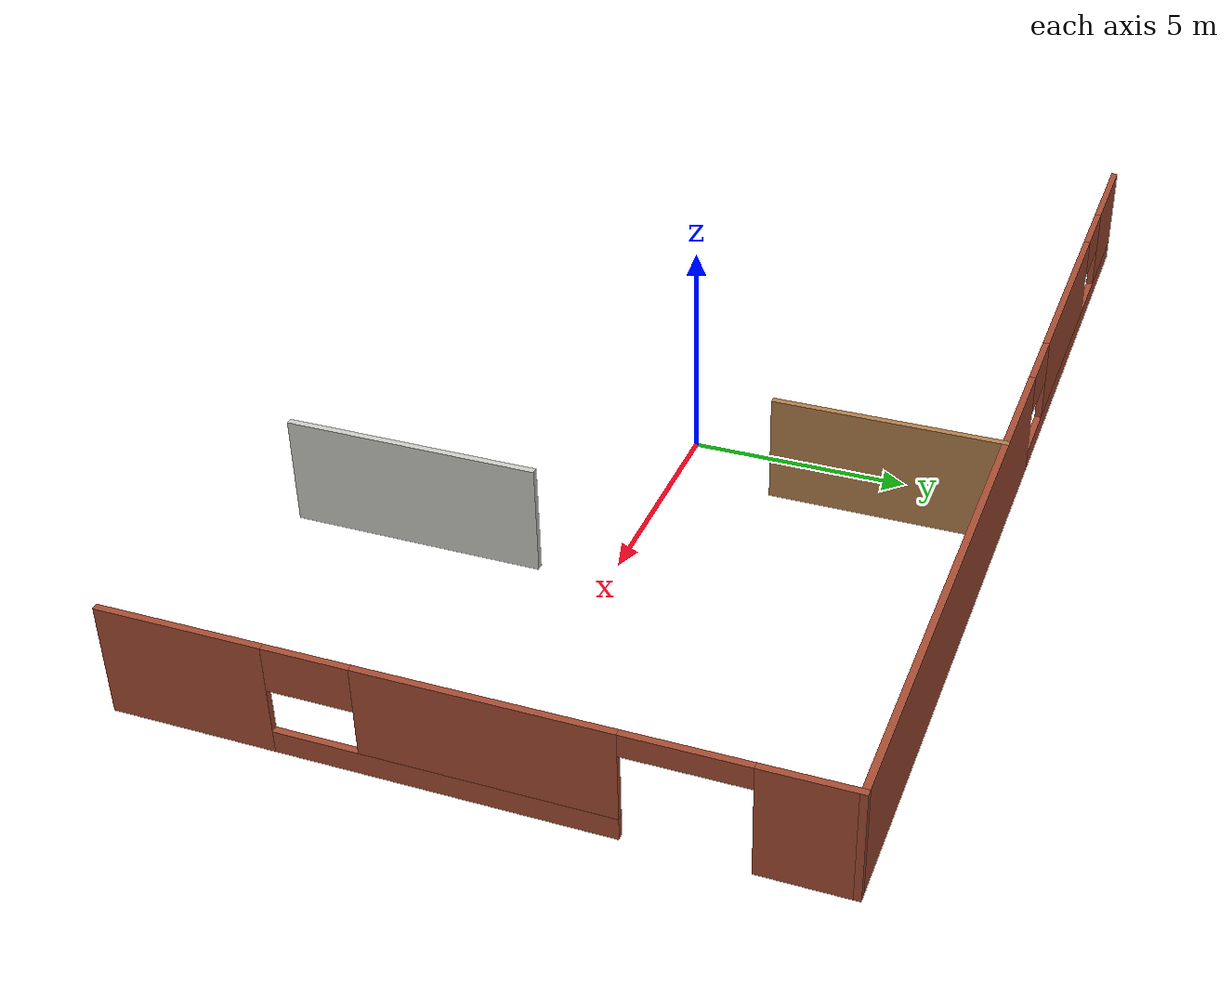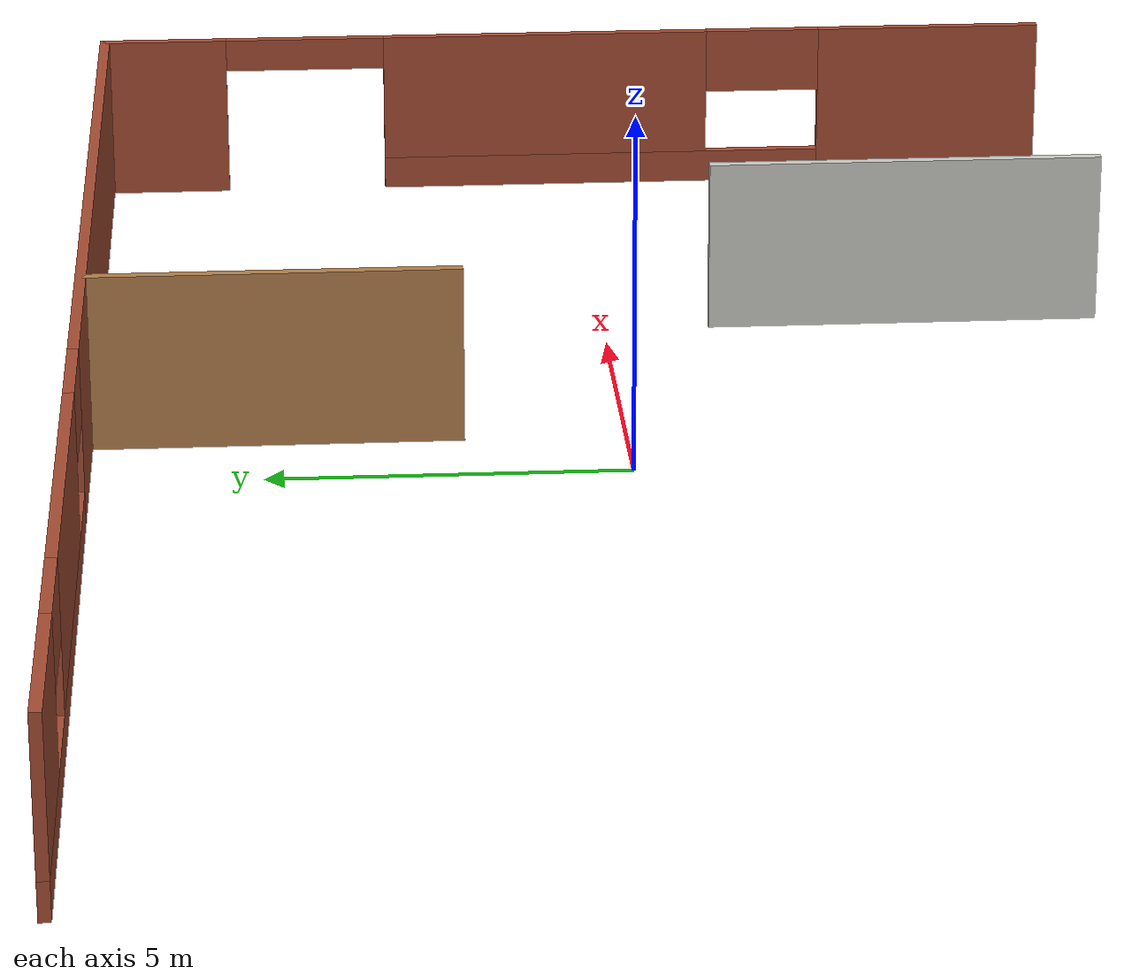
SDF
<sdf version="1.6">
 <model name="myhouse">
  <link name="Wall_12">
   <pose>5.62786 -4.42847 0 0 -0 1.5708</pose>
   <visual name="Wall_12_Visual">
    <pose>0 0 1.25 0 -0 0</pose>
    <geometry><box><size>5.75 0.15 2.5</size></box></geometry>
    <material>
     <script><uri>file://media/materials/scripts/gazebo.material</uri><name>Gazebo/CeilingTiled</name></script>
     <ambient>0.333333 1 1 1</ambient>
     <shader type="pixel"/>
     <diffuse>1 1 1 1</diffuse>
     <specular>0 0 0 1</specular>
     <emissive>0 0 0 1</emissive>
    </material>
    <meta><layer>0</layer></meta>
   </visual>
   <collision name="Wall_12_Collision">
    <pose>0 0 1.25 0 -0 0</pose>
    <geometry><box><size>5.75 0.15 2.5</size></box></geometry>
    <surface>
     <friction>
      <ode><mu>1</mu><mu2>1</mu2><fdir1>0 0 0</fdir1><slip1>0</slip1><slip2>0</slip2></ode>
      <torsional>
       <coefficient>1</coefficient>
       <patch_radius>0</patch_radius>
       <surface_radius>0</surface_radius>
       <use_patch_radius>1</use_patch_radius>
       <ode><slip>0</slip></ode>
      </torsional>
     </friction>
     <bounce><restitution_coefficient>0</restitution_coefficient><threshold>1e+06</threshold></bounce>
     <contact>
      <collide_without_contact>0</collide_without_contact>
      <collide_without_contact_bitmask>1</collide_without_contact_bitmask>
      <collide_bitmask>1</collide_bitmask>
      <ode>
       <soft_cfm>0</soft_cfm>
       <soft_erp>0.2</soft_erp>
       <kp>1e+13</kp>
       <kd>1</kd>
       <max_vel>0.01</max_vel>
       <min_depth>0</min_depth>
      </ode>
      <bullet>
       <split_impulse>1</split_impulse>
       <split_impulse_penetration_threshold>-0.01</split_impulse_penetration_threshold>
       <soft_cfm>0</soft_cfm>
       <soft_erp>0.2</soft_erp>
       <kp>1e+13</kp>
       <kd>1</kd>
      </bullet>
     </contact>
    </surface>
   </collision>
  </link>
  <link name="Wall_3">
   <pose>12.55 -0.012047 0 0 -0 1.5708</pose>
   <visual name="Wall_3_Visual_0">
    <pose>-5.73076 0 1.25 0 -0 0</pose>
    <geometry><box><size>3.53847 0.15 2.5</size></box></geometry>
    <material>
     <script><uri>file://media/materials/scripts/gazebo.material</uri><name>Gazebo/Bricks</name></script>
     <ambient>1 1 1 1</ambient>
     <shader type="pixel"/>
     <diffuse>1 1 1 1</diffuse>
     <specular>0.2 0.2 0.2 1</specular>
     <emissive>0 0 0 1</emissive>
    </material>
    <meta><layer>0</layer></meta>
   </visual>
   <visual name="Wall_3_Visual_1">
    <pose>6.50526 0 1.25 0 -0 0</pose>
    <geometry><box><size>1.98949 0.15 2.5</size></box></geometry>
    <material>
     <script><uri>file://media/materials/scripts/gazebo.material</uri><name>Gazebo/Bricks</name></script>
     <ambient>1 1 1 1</ambient>
     <shader type="pixel"/>
     <diffuse>1 1 1 1</diffuse>
     <specular>0.2 0.2 0.2 1</specular>
     <emissive>0 0 0 1</emissive>
    </material>
    <meta><layer>0</layer></meta>
   </visual>
   <visual name="Wall_3_Visual_2">
    <pose>-0.475509 0 0.25 0 -0 0</pose>
    <geometry><box><size>6.97204 0.15 0.5</size></box></geometry>
    <material>
     <script><uri>file://media/materials/scripts/gazebo.material</uri><name>Gazebo/Bricks</name></script>
     <ambient>1 1 1 1</ambient>
     <shader type="pixel"/>
     <diffuse>1 1 1 1</diffuse>
     <specular>0.2 0.2 0.2 1</specular>
     <emissive>0 0 0 1</emissive>
    </material>
    <meta><layer>0</layer></meta>
   </visual>
   <visual name="Wall_3_Visual_3">
    <pose>0.424491 0 1.5 0 -0 0</pose>
    <geometry><box><size>5.17204 0.15 2</size></box></geometry>
    <material>
     <script><uri>file://media/materials/scripts/gazebo.material</uri><name>Gazebo/Bricks</name></script>
     <ambient>1 1 1 1</ambient>
     <shader type="pixel"/>
     <diffuse>1 1 1 1</diffuse>
     <specular>0.2 0.2 0.2 1</specular>
     <emissive>0 0 0 1</emissive>
    </material>
    <meta><layer>0</layer></meta>
   </visual>
   <visual name="Wall_3_Visual_4">
    <pose>-3.06153 0 2 0 -0 0</pose>
    <geometry><box><size>1.8 0.15 1</size></box></geometry>
    <material>
     <script><uri>file://media/materials/scripts/gazebo.material</uri><name>Gazebo/Bricks</name></script>
     <ambient>1 1 1 1</ambient>
     <shader type="pixel"/>
     <diffuse>1 1 1 1</diffuse>
     <specular>0.2 0.2 0.2 1</specular>
     <emissive>0 0 0 1</emissive>
    </material>
    <meta><layer>0</layer></meta>
   </visual>
   <visual name="Wall_3_Visual_5">
    <pose>4.26051 0 2.25 0 -0 0</pose>
    <geometry><box><size>2.5 0.15 0.5</size></box></geometry>
    <material>
     <script><uri>file://media/materials/scripts/gazebo.material</uri><name>Gazebo/Bricks</name></script>
     <ambient>1 1 1 1</ambient>
     <shader type="pixel"/>
     <diffuse>1 1 1 1</diffuse>
     <specular>0.2 0.2 0.2 1</specular>
     <emissive>0 0 0 1</emissive>
    </material>
    <meta><layer>0</layer></meta>
   </visual>
   <collision name="Wall_3_Collision_0">
    <pose>-5.73076 0 1.25 0 -0 0</pose>
    <geometry><box><size>3.53847 0.15 2.5</size></box></geometry>
    <surface>
     <friction>
      <ode><mu>1</mu><mu2>1</mu2><fdir1>0 0 0</fdir1><slip1>0</slip1><slip2>0</slip2></ode>
      <torsional>
       <coefficient>1</coefficient>
       <patch_radius>0</patch_radius>
       <surface_radius>0</surface_radius>
       <use_patch_radius>1</use_patch_radius>
       <ode><slip>0</slip></ode>
      </torsional>
     </friction>
     <bounce><restitution_coefficient>0</restitution_coefficient><threshold>1e+06</threshold></bounce>
     <contact>
      <collide_without_contact>0</collide_without_contact>
      <collide_without_contact_bitmask>1</collide_without_contact_bitmask>
      <collide_bitmask>1</collide_bitmask>
      <ode>
       <soft_cfm>0</soft_cfm>
       <soft_erp>0.2</soft_erp>
       <kp>1e+13</kp>
       <kd>1</kd>
       <max_vel>0.01</max_vel>
       <min_depth>0</min_depth>
      </ode>
      <bullet>
       <split_impulse>1</split_impulse>
       <split_impulse_penetration_threshold>-0.01</split_impulse_penetration_threshold>
       <soft_cfm>0</soft_cfm>
       <soft_erp>0.2</soft_erp>
       <kp>1e+13</kp>
       <kd>1</kd>
      </bullet>
     </contact>
    </surface>
   </collision>
   <collision name="Wall_3_Collision_1">
    <pose>6.50526 0 1.25 0 -0 0</pose>
    <geometry><box><size>1.98949 0.15 2.5</size></box></geometry>
    <surface>
     <friction>
      <ode><mu>1</mu><mu2>1</mu2><fdir1>0 0 0</fdir1><slip1>0</slip1><slip2>0</slip2></ode>
      <torsional>
       <coefficient>1</coefficient>
       <patch_radius>0</patch_radius>
       <surface_radius>0</surface_radius>
       <use_patch_radius>1</use_patch_radius>
       <ode><slip>0</slip></ode>
      </torsional>
     </friction>
     <bounce><restitution_coefficient>0</restitution_coefficient><threshold>1e+06</threshold></bounce>
     <contact>
      <collide_without_contact>0</collide_without_contact>
      <collide_without_contact_bitmask>1</collide_without_contact_bitmask>
      <collide_bitmask>1</collide_bitmask>
      <ode>
       <soft_cfm>0</soft_cfm>
       <soft_erp>0.2</soft_erp>
       <kp>1e+13</kp>
       <kd>1</kd>
       <max_vel>0.01</max_vel>
       <min_depth>0</min_depth>
      </ode>
      <bullet>
       <split_impulse>1</split_impulse>
       <split_impulse_penetration_threshold>-0.01</split_impulse_penetration_threshold>
       <soft_cfm>0</soft_cfm>
       <soft_erp>0.2</soft_erp>
       <kp>1e+13</kp>
       <kd>1</kd>
      </bullet>
     </contact>
    </surface>
   </collision>
   <collision name="Wall_3_Collision_2">
    <pose>-0.475509 0 0.25 0 -0 0</pose>
    <geometry><box><size>6.97204 0.15 0.5</size></box></geometry>
    <surface>
     <friction>
      <ode><mu>1</mu><mu2>1</mu2><fdir1>0 0 0</fdir1><slip1>0</slip1><slip2>0</slip2></ode>
      <torsional>
       <coefficient>1</coefficient>
       <patch_radius>0</patch_radius>
       <surface_radius>0</surface_radius>
       <use_patch_radius>1</use_patch_radius>
       <ode><slip>0</slip></ode>
      </torsional>
     </friction>
     <bounce><restitution_coefficient>0</restitution_coefficient><threshold>1e+06</threshold></bounce>
     <contact>
      <collide_without_contact>0</collide_without_contact>
      <collide_without_contact_bitmask>1</collide_without_contact_bitmask>
      <collide_bitmask>1</collide_bitmask>
      <ode>
       <soft_cfm>0</soft_cfm>
       <soft_erp>0.2</soft_erp>
       <kp>1e+13</kp>
       <kd>1</kd>
       <max_vel>0.01</max_vel>
       <min_depth>0</min_depth>
      </ode>
      <bullet>
       <split_impulse>1</split_impulse>
       <split_impulse_penetration_threshold>-0.01</split_impulse_penetration_threshold>
       <soft_cfm>0</soft_cfm>
       <soft_erp>0.2</soft_erp>
       <kp>1e+13</kp>
       <kd>1</kd>
      </bullet>
     </contact>
    </surface>
   </collision>
   <collision name="Wall_3_Collision_3">
    <pose>0.424491 0 1.5 0 -0 0</pose>
    <geometry><box><size>5.17204 0.15 2</size></box></geometry>
    <surface>
     <friction>
      <ode><mu>1</mu><mu2>1</mu2><fdir1>0 0 0</fdir1><slip1>0</slip1><slip2>0</slip2></ode>
      <torsional>
       <coefficient>1</coefficient>
       <patch_radius>0</patch_radius>
       <surface_radius>0</surface_radius>
       <use_patch_radius>1</use_patch_radius>
       <ode><slip>0</slip></ode>
      </torsional>
     </friction>
     <bounce><restitution_coefficient>0</restitution_coefficient><threshold>1e+06</threshold></bounce>
     <contact>
      <collide_without_contact>0</collide_without_contact>
      <collide_without_contact_bitmask>1</collide_without_contact_bitmask>
      <collide_bitmask>1</collide_bitmask>
      <ode>
       <soft_cfm>0</soft_cfm>
       <soft_erp>0.2</soft_erp>
       <kp>1e+13</kp>
       <kd>1</kd>
       <max_vel>0.01</max_vel>
       <min_depth>0</min_depth>
      </ode>
      <bullet>
       <split_impulse>1</split_impulse>
       <split_impulse_penetration_threshold>-0.01</split_impulse_penetration_threshold>
       <soft_cfm>0</soft_cfm>
       <soft_erp>0.2</soft_erp>
       <kp>1e+13</kp>
       <kd>1</kd>
      </bullet>
     </contact>
    </surface>
   </collision>
   <collision name="Wall_3_Collision_5">
    <pose>4.26051 0 2.25 0 -0 0</pose>
    <geometry><box><size>2.5 0.15 0.5</size></box></geometry>
    <surface>
     <friction>
      <ode><mu>1</mu><mu2>1</mu2><fdir1>0 0 0</fdir1><slip1>0</slip1><slip2>0</slip2></ode>
      <torsional>
       <coefficient>1</coefficient>
       <patch_radius>0</patch_radius>
       <surface_radius>0</surface_radius>
       <use_patch_radius>1</use_patch_radius>
       <ode><slip>0</slip></ode>
      </torsional>
     </friction>
     <bounce><restitution_coefficient>0</restitution_coefficient><threshold>1e+06</threshold></bounce>
     <contact>
      <collide_without_contact>0</collide_without_contact>
      <collide_without_contact_bitmask>1</collide_without_contact_bitmask>
      <collide_bitmask>1</collide_bitmask>
      <ode>
       <soft_cfm>0</soft_cfm>
       <soft_erp>0.2</soft_erp>
       <kp>1e+13</kp>
       <kd>1</kd>
       <max_vel>0.01</max_vel>
       <min_depth>0</min_depth>
      </ode>
      <bullet>
       <split_impulse>1</split_impulse>
       <split_impulse_penetration_threshold>-0.01</split_impulse_penetration_threshold>
       <soft_cfm>0</soft_cfm>
       <soft_erp>0.2</soft_erp>
       <kp>1e+13</kp>
       <kd>1</kd>
      </bullet>
     </contact>
    </surface>
   </collision>
   <collision name="Wall_3_Collision_4">
    <pose>-3.06153 0 2 0 -0 0</pose>
    <geometry><box><size>1.8 0.15 1</size></box></geometry>
    <surface>
     <friction>
      <ode><mu>1</mu><mu2>1</mu2><fdir1>0 0 0</fdir1><slip1>0</slip1><slip2>0</slip2></ode>
      <torsional>
       <coefficient>1</coefficient>
       <patch_radius>0</patch_radius>
       <surface_radius>0</surface_radius>
       <use_patch_radius>1</use_patch_radius>
       <ode><slip>0</slip></ode>
      </torsional>
     </friction>
     <bounce><restitution_coefficient>0</restitution_coefficient><threshold>1e+06</threshold></bounce>
     <contact>
      <collide_without_contact>0</collide_without_contact>
      <collide_without_contact_bitmask>1</collide_without_contact_bitmask>
      <collide_bitmask>1</collide_bitmask>
      <ode>
       <soft_cfm>0</soft_cfm>
       <soft_erp>0.2</soft_erp>
       <kp>1e+13</kp>
       <kd>1</kd>
       <max_vel>0.01</max_vel>
       <min_depth>0</min_depth>
      </ode>
      <bullet>
       <split_impulse>1</split_impulse>
       <split_impulse_penetration_threshold>-0.01</split_impulse_penetration_threshold>
       <soft_cfm>0</soft_cfm>
       <soft_erp>0.2</soft_erp>
       <kp>1e+13</kp>
       <kd>1</kd>
      </bullet>
     </contact>
    </surface>
   </collision>
  </link>
  <link name="Wall_4">
   <pose>0 7.41295 0 0 -0 3.14159</pose>
   <visual name="Wall_4_Visual_0">
    <pose>-5.56469 0 1.25 0 -0 0</pose>
    <geometry><box><size>14.1206 0.15 2.5</size></box></geometry>
    <material>
     <script><uri>file://media/materials/scripts/gazebo.material</uri><name>Gazebo/Bricks</name></script>
     <ambient>1 1 1 1</ambient>
     <shader type="pixel"/>
     <diffuse>1 1 1 1</diffuse>
     <specular>0.2 0.2 0.2 1</specular>
     <emissive>0 0 0 1</emissive>
    </material>
    <meta><layer>0</layer></meta>
   </visual>
   <visual name="Wall_4_Visual_1">
    <pose>7.06031 0 0.25 0 -0 0</pose>
    <geometry><box><size>11.1294 0.15 0.5</size></box></geometry>
    <material>
     <script><uri>file://media/materials/scripts/gazebo.material</uri><name>Gazebo/Bricks</name></script>
     <ambient>1 1 1 1</ambient>
     <shader type="pixel"/>
     <diffuse>1 1 1 1</diffuse>
     <specular>0.2 0.2 0.2 1</specular>
     <emissive>0 0 0 1</emissive>
    </material>
    <meta><layer>0</layer></meta>
   </visual>
   <visual name="Wall_4_Visual_2">
    <pose>5.75457 0 1.5 0 -0 0</pose>
    <geometry><box><size>5.3179 0.15 2</size></box></geometry>
    <material>
     <script><uri>file://media/materials/scripts/gazebo.material</uri><name>Gazebo/Bricks</name></script>
     <ambient>1 1 1 1</ambient>
     <shader type="pixel"/>
     <diffuse>1 1 1 1</diffuse>
     <specular>0.2 0.2 0.2 1</specular>
     <emissive>0 0 0 1</emissive>
    </material>
    <meta><layer>0</layer></meta>
   </visual>
   <visual name="Wall_4_Visual_3">
    <pose>11.3193 0 1.5 0 -0 0</pose>
    <geometry><box><size>2.61148 0.15 2</size></box></geometry>
    <material>
     <script><uri>file://media/materials/scripts/gazebo.material</uri><name>Gazebo/Bricks</name></script>
     <ambient>1 1 1 1</ambient>
     <shader type="pixel"/>
     <diffuse>1 1 1 1</diffuse>
     <specular>0.2 0.2 0.2 1</specular>
     <emissive>0 0 0 1</emissive>
    </material>
    <meta><layer>0</layer></meta>
   </visual>
   <visual name="Wall_4_Visual_4">
    <pose>2.29561 0 2 0 -0 0</pose>
    <geometry><box><size>1.6 0.15 1</size></box></geometry>
    <material>
     <script><uri>file://media/materials/scripts/gazebo.material</uri><name>Gazebo/Bricks</name></script>
     <ambient>1 1 1 1</ambient>
     <shader type="pixel"/>
     <diffuse>1 1 1 1</diffuse>
     <specular>0.2 0.2 0.2 1</specular>
     <emissive>0 0 0 1</emissive>
    </material>
    <meta><layer>0</layer></meta>
   </visual>
   <visual name="Wall_4_Visual_5">
    <pose>9.21352 0 2 0 -0 0</pose>
    <geometry><box><size>1.6 0.15 1</size></box></geometry>
    <material>
     <script><uri>file://media/materials/scripts/gazebo.material</uri><name>Gazebo/Bricks</name></script>
     <ambient>1 1 1 1</ambient>
     <shader type="pixel"/>
     <diffuse>1 1 1 1</diffuse>
     <specular>0.2 0.2 0.2 1</specular>
     <emissive>0 0 0 1</emissive>
    </material>
    <meta><layer>0</layer></meta>
   </visual>
   <collision name="Wall_4_Collision_0">
    <pose>-5.56469 0 1.25 0 -0 0</pose>
    <geometry><box><size>14.1206 0.15 2.5</size></box></geometry>
    <surface>
     <friction>
      <ode><mu>1</mu><mu2>1</mu2><fdir1>0 0 0</fdir1><slip1>0</slip1><slip2>0</slip2></ode>
      <torsional>
       <coefficient>1</coefficient>
       <patch_radius>0</patch_radius>
       <surface_radius>0</surface_radius>
       <use_patch_radius>1</use_patch_radius>
       <ode><slip>0</slip></ode>
      </torsional>
     </friction>
     <bounce><restitution_coefficient>0</restitution_coefficient><threshold>1e+06</threshold></bounce>
     <contact>
      <collide_without_contact>0</collide_without_contact>
      <collide_without_contact_bitmask>1</collide_without_contact_bitmask>
      <collide_bitmask>1</collide_bitmask>
      <ode>
       <soft_cfm>0</soft_cfm>
       <soft_erp>0.2</soft_erp>
       <kp>1e+13</kp>
       <kd>1</kd>
       <max_vel>0.01</max_vel>
       <min_depth>0</min_depth>
      </ode>
      <bullet>
       <split_impulse>1</split_impulse>
       <split_impulse_penetration_threshold>-0.01</split_impulse_penetration_threshold>
       <soft_cfm>0</soft_cfm>
       <soft_erp>0.2</soft_erp>
       <kp>1e+13</kp>
       <kd>1</kd>
      </bullet>
     </contact>
    </surface>
   </collision>
   <collision name="Wall_4_Collision_1">
    <pose>7.06031 0 0.25 0 -0 0</pose>
    <geometry><box><size>11.1294 0.15 0.5</size></box></geometry>
    <surface>
     <friction>
      <ode><mu>1</mu><mu2>1</mu2><fdir1>0 0 0</fdir1><slip1>0</slip1><slip2>0</slip2></ode>
      <torsional>
       <coefficient>1</coefficient>
       <patch_radius>0</patch_radius>
       <surface_radius>0</surface_radius>
       <use_patch_radius>1</use_patch_radius>
       <ode><slip>0</slip></ode>
      </torsional>
     </friction>
     <bounce><restitution_coefficient>0</restitution_coefficient><threshold>1e+06</threshold></bounce>
     <contact>
      <collide_without_contact>0</collide_without_contact>
      <collide_without_contact_bitmask>1</collide_without_contact_bitmask>
      <collide_bitmask>1</collide_bitmask>
      <ode>
       <soft_cfm>0</soft_cfm>
       <soft_erp>0.2</soft_erp>
       <kp>1e+13</kp>
       <kd>1</kd>
       <max_vel>0.01</max_vel>
       <min_depth>0</min_depth>
      </ode>
      <bullet>
       <split_impulse>1</split_impulse>
       <split_impulse_penetration_threshold>-0.01</split_impulse_penetration_threshold>
       <soft_cfm>0</soft_cfm>
       <soft_erp>0.2</soft_erp>
       <kp>1e+13</kp>
       <kd>1</kd>
      </bullet>
     </contact>
    </surface>
   </collision>
   <collision name="Wall_4_Collision_2">
    <pose>5.75457 0 1.5 0 -0 0</pose>
    <geometry><box><size>5.3179 0.15 2</size></box></geometry>
    <surface>
     <friction>
      <ode><mu>1</mu><mu2>1</mu2><fdir1>0 0 0</fdir1><slip1>0</slip1><slip2>0</slip2></ode>
      <torsional>
       <coefficient>1</coefficient>
       <patch_radius>0</patch_radius>
       <surface_radius>0</surface_radius>
       <use_patch_radius>1</use_patch_radius>
       <ode><slip>0</slip></ode>
      </torsional>
     </friction>
     <bounce><restitution_coefficient>0</restitution_coefficient><threshold>1e+06</threshold></bounce>
     <contact>
      <collide_without_contact>0</collide_without_contact>
      <collide_without_contact_bitmask>1</collide_without_contact_bitmask>
      <collide_bitmask>1</collide_bitmask>
      <ode>
       <soft_cfm>0</soft_cfm>
       <soft_erp>0.2</soft_erp>
       <kp>1e+13</kp>
       <kd>1</kd>
       <max_vel>0.01</max_vel>
       <min_depth>0</min_depth>
      </ode>
      <bullet>
       <split_impulse>1</split_impulse>
       <split_impulse_penetration_threshold>-0.01</split_impulse_penetration_threshold>
       <soft_cfm>0</soft_cfm>
       <soft_erp>0.2</soft_erp>
       <kp>1e+13</kp>
       <kd>1</kd>
      </bullet>
     </contact>
    </surface>
   </collision>
   <collision name="Wall_4_Collision_3">
    <pose>11.3193 0 1.5 0 -0 0</pose>
    <geometry><box><size>2.61148 0.15 2</size></box></geometry>
    <surface>
     <friction>
      <ode><mu>1</mu><mu2>1</mu2><fdir1>0 0 0</fdir1><slip1>0</slip1><slip2>0</slip2></ode>
      <torsional>
       <coefficient>1</coefficient>
       <patch_radius>0</patch_radius>
       <surface_radius>0</surface_radius>
       <use_patch_radius>1</use_patch_radius>
       <ode><slip>0</slip></ode>
      </torsional>
     </friction>
     <bounce><restitution_coefficient>0</restitution_coefficient><threshold>1e+06</threshold></bounce>
     <contact>
      <collide_without_contact>0</collide_without_contact>
      <collide_without_contact_bitmask>1</collide_without_contact_bitmask>
      <collide_bitmask>1</collide_bitmask>
      <ode>
       <soft_cfm>0</soft_cfm>
       <soft_erp>0.2</soft_erp>
       <kp>1e+13</kp>
       <kd>1</kd>
       <max_vel>0.01</max_vel>
       <min_depth>0</min_depth>
      </ode>
      <bullet>
       <split_impulse>1</split_impulse>
       <split_impulse_penetration_threshold>-0.01</split_impulse_penetration_threshold>
       <soft_cfm>0</soft_cfm>
       <soft_erp>0.2</soft_erp>
       <kp>1e+13</kp>
       <kd>1</kd>
      </bullet>
     </contact>
    </surface>
   </collision>
   <collision name="Wall_4_Collision_4">
    <pose>2.29561 0 2 0 -0 0</pose>
    <geometry><box><size>1.6 0.15 1</size></box></geometry>
    <surface>
     <friction>
      <ode><mu>1</mu><mu2>1</mu2><fdir1>0 0 0</fdir1><slip1>0</slip1><slip2>0</slip2></ode>
      <torsional>
       <coefficient>1</coefficient>
       <patch_radius>0</patch_radius>
       <surface_radius>0</surface_radius>
       <use_patch_radius>1</use_patch_radius>
       <ode><slip>0</slip></ode>
      </torsional>
     </friction>
     <bounce><restitution_coefficient>0</restitution_coefficient><threshold>1e+06</threshold></bounce>
     <contact>
      <collide_without_contact>0</collide_without_contact>
      <collide_without_contact_bitmask>1</collide_without_contact_bitmask>
      <collide_bitmask>1</collide_bitmask>
      <ode>
       <soft_cfm>0</soft_cfm>
       <soft_erp>0.2</soft_erp>
       <kp>1e+13</kp>
       <kd>1</kd>
       <max_vel>0.01</max_vel>
       <min_depth>0</min_depth>
      </ode>
      <bullet>
       <split_impulse>1</split_impulse>
       <split_impulse_penetration_threshold>-0.01</split_impulse_penetration_threshold>
       <soft_cfm>0</soft_cfm>
       <soft_erp>0.2</soft_erp>
       <kp>1e+13</kp>
       <kd>1</kd>
      </bullet>
     </contact>
    </surface>
   </collision>
   <collision name="Wall_4_Collision_5">
    <pose>9.21352 0 2 0 -0 0</pose>
    <geometry><box><size>1.6 0.15 1</size></box></geometry>
    <surface>
     <friction>
      <ode><mu>1</mu><mu2>1</mu2><fdir1>0 0 0</fdir1><slip1>0</slip1><slip2>0</slip2></ode>
      <torsional>
       <coefficient>1</coefficient>
       <patch_radius>0</patch_radius>
       <surface_radius>0</surface_radius>
       <use_patch_radius>1</use_patch_radius>
       <ode><slip>0</slip></ode>
      </torsional>
     </friction>
     <bounce><restitution_coefficient>0</restitution_coefficient><threshold>1e+06</threshold></bounce>
     <contact>
      <collide_without_contact>0</collide_without_contact>
      <collide_without_contact_bitmask>1</collide_without_contact_bitmask>
      <collide_bitmask>1</collide_bitmask>
      <ode>
       <soft_cfm>0</soft_cfm>
       <soft_erp>0.2</soft_erp>
       <kp>1e+13</kp>
       <kd>1</kd>
       <max_vel>0.01</max_vel>
       <min_depth>0</min_depth>
      </ode>
      <bullet>
       <split_impulse>1</split_impulse>
       <split_impulse_penetration_threshold>-0.01</split_impulse_penetration_threshold>
       <soft_cfm>0</soft_cfm>
       <soft_erp>0.2</soft_erp>
       <kp>1e+13</kp>
       <kd>1</kd>
      </bullet>
     </contact>
    </surface>
   </collision>
  </link>
  <link name="Wall_7">
   <pose>1.33353 4.85893 0 0 -0 1.5708</pose>
   <visual name="Wall_7_Visual">
    <pose>0 0 1.25 0 -0 0</pose>
    <geometry><box><size>5.25 0.15 2.5</size></box></geometry>
    <material>
     <script><uri>file://media/materials/scripts/gazebo.material</uri><name>Gazebo/Wood</name></script>
     <ambient>1 0 0 1</ambient>
     <shader type="pixel"/>
     <diffuse>1 1 1 1</diffuse>
     <specular>0.2 0.2 0.2 1</specular>
     <emissive>0 0 0 1</emissive>
    </material>
    <meta><layer>0</layer></meta>
   </visual>
   <collision name="Wall_7_Collision">
    <pose>0 0 1.25 0 -0 0</pose>
    <geometry><box><size>5.25 0.15 2.5</size></box></geometry>
    <surface>
     <friction>
      <ode><mu>1</mu><mu2>1</mu2><fdir1>0 0 0</fdir1><slip1>0</slip1><slip2>0</slip2></ode>
      <torsional>
       <coefficient>1</coefficient>
       <patch_radius>0</patch_radius>
       <surface_radius>0</surface_radius>
       <use_patch_radius>1</use_patch_radius>
       <ode><slip>0</slip></ode>
      </torsional>
     </friction>
     <bounce><restitution_coefficient>0</restitution_coefficient><threshold>1e+06</threshold></bounce>
     <contact>
      <collide_without_contact>0</collide_without_contact>
      <collide_without_contact_bitmask>1</collide_without_contact_bitmask>
      <collide_bitmask>1</collide_bitmask>
      <ode>
       <soft_cfm>0</soft_cfm>
       <soft_erp>0.2</soft_erp>
       <kp>1e+13</kp>
       <kd>1</kd>
       <max_vel>0.01</max_vel>
       <min_depth>0</min_depth>
      </ode>
      <bullet>
       <split_impulse>1</split_impulse>
       <split_impulse_penetration_threshold>-0.01</split_impulse_penetration_threshold>
       <soft_cfm>0</soft_cfm>
       <soft_erp>0.2</soft_erp>
       <kp>1e+13</kp>
       <kd>1</kd>
      </bullet>
     </contact>
    </surface>
   </collision>
  </link>
  <static>1</static>
 </model>
</sdf>
